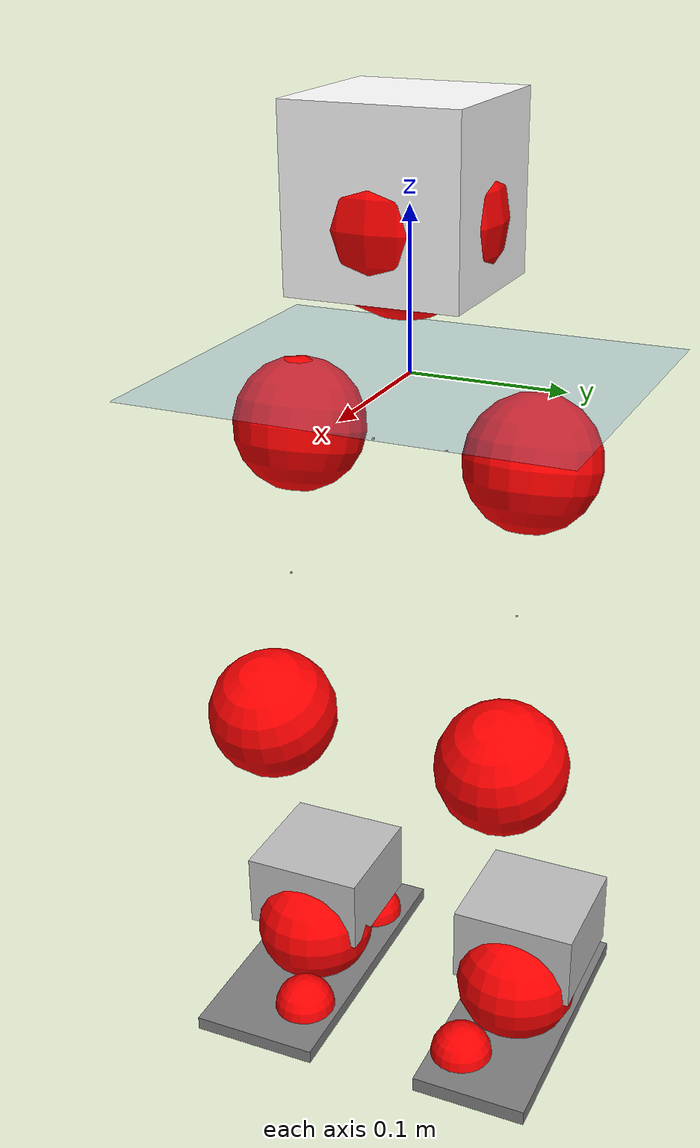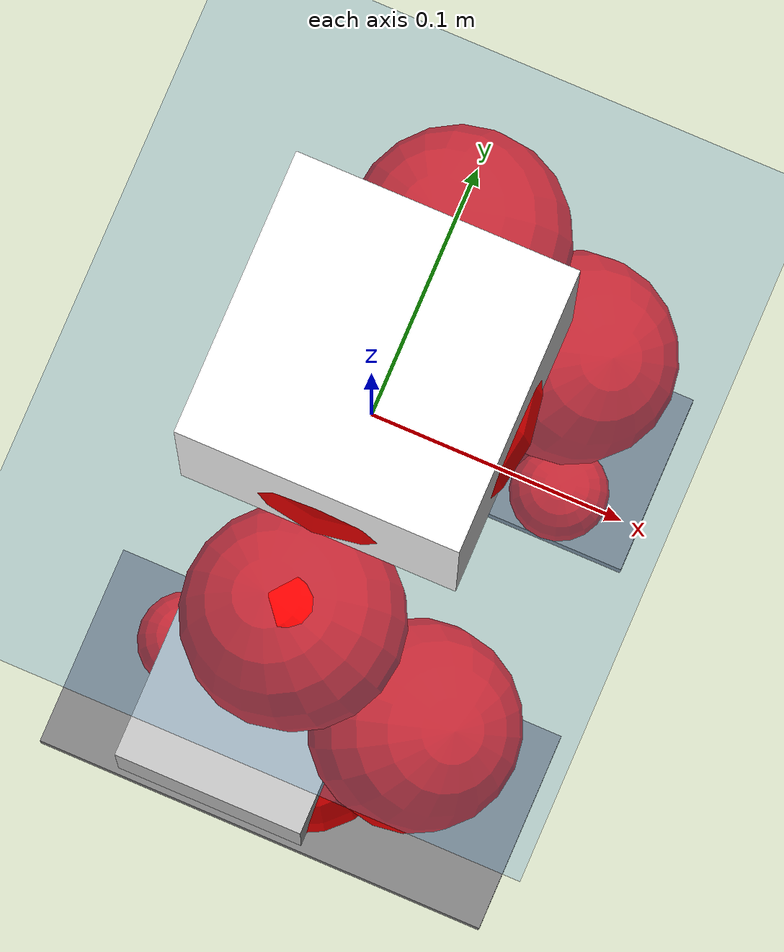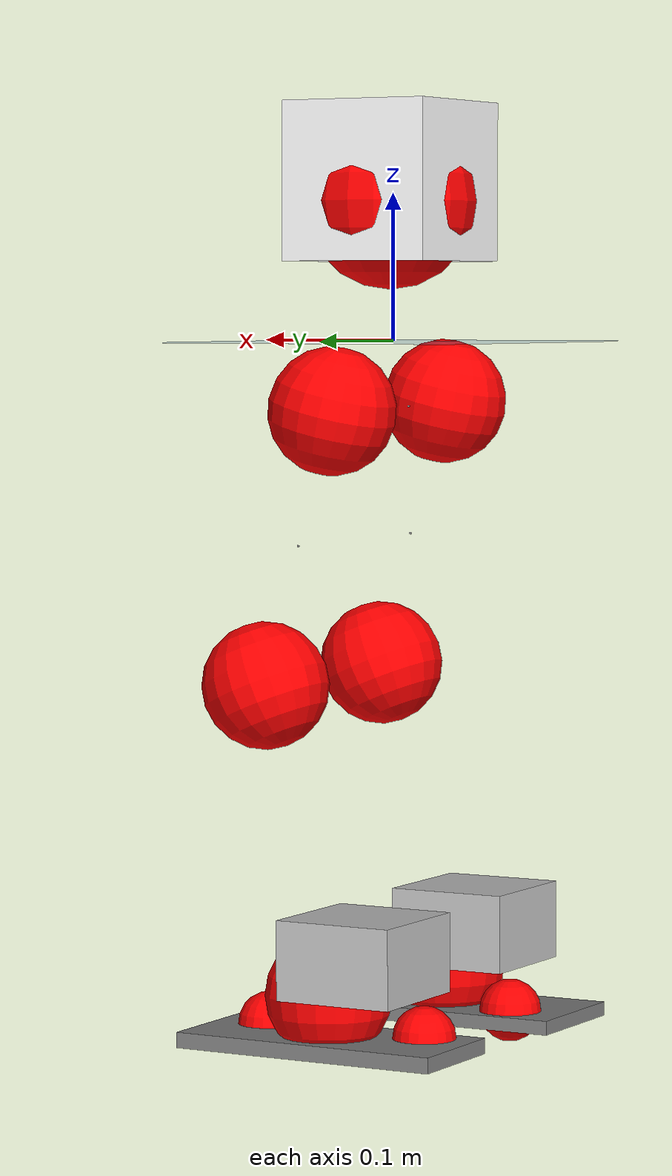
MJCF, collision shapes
<mujoco model="pi_12dof_release_v1">
  <compiler angle="radian" assetdir="assets" balanceinertia="true" inertiafromgeom="false"/>

  <option timestep="0.005" density="1.2" viscosity="2e-05"/>

  <size nkey="1"/>

  <visual>
    <quality shadowsize="8192"/>
    <map shadowclip="0.5"/>
  </visual>

  <default>
    <default class="/">
      <joint armature="0.01" damping="0.01" frictionloss="0.01"/>
      <geom contype="0" conaffinity="0" group="1" solref="-1000 -80"/>
      <site size="0.01 0.005 0.005" group="5"/>
      <general forcelimited="true" biastype="affine" gainprm="20" biasprm="0 -20 -0.5"/>
      <default class="foot">
        <geom size="0.0845 0.036 0.005" type="box" condim="6" group="4" priority="1" friction="0.9 0.2 0.2" solimp="0.015 1 0.005"/>
      </default>
      <default class="reward_collision_sphere">
        <geom group="5" rgba="1 0 0 1"/>
      </default>
    </default>
  </default>

  <asset>
    <texture type="skybox" colorspace="auto" name="//unnamed_texture_0" builtin="gradient" rgb1="0.95 0.95 0.95" rgb2="0.95 0.95 0.95" width="100" height="600"/>
    <texture type="2d" colorspace="auto" name="texplane" builtin="checker" rgb1="0.345 0.575 0.748" rgb2="0.345 0.575 0.748" markrgb="1 1 1" width="512" height="512"/>
    <material name="MatPlane" class="/" texture="texplane" texuniform="true" texrepeat="2 2" specular="0.9"/>
    <mesh name="baselink_1" class="/" file="baselink_1.STL"/>
    <mesh name="r_hip_pitch_link" class="/" file="r_hip_pitch_link.STL"/>
    <mesh name="r_hip_roll_link" class="/" file="r_hip_roll_link.STL"/>
    <mesh name="r_thigh_link" class="/" file="r_thigh_link.STL"/>
    <mesh name="r_calf_link" class="/" file="r_calf_link.STL"/>
    <mesh name="r_ankle_pitch_link" class="/" file="r_ankle_pitch_link.STL"/>
    <mesh name="r_ankle_roll_link" class="/" file="r_ankle_roll_link.STL"/>
    <mesh name="l_hip_pitch_link" class="/" file="l_hip_pitch_link.STL"/>
    <mesh name="l_hip_roll_link" class="/" file="l_hip_roll_link.STL"/>
    <mesh name="l_thigh_link" class="/" file="l_thigh_link.STL"/>
    <mesh name="l_calf_link" class="/" file="l_calf_link.STL"/>
    <mesh name="l_ankle_pitch_link" class="/" file="l_ankle_pitch_link.STL"/>
    <mesh name="l_ankle_roll_link" class="/" file="l_ankle_roll_link.STL"/>
  </asset>

  <worldbody>
    <geom name="floor" class="/" size="100 100 0.125" type="plane" group="0" material="MatPlane"/>
    <light name="toplight_shadow" class="/" pos="0 0 5" dir="0.0990148 0.0990148 -0.990148" type="directional" ambient="0.04 0.04 0.04" diffuse="0.55 0.55 0.55" specular="0.12 0.12 0.12"/>
    <light name="toplight_fill" class="/" pos="0 0 5" dir="0.0990148 0.0990148 -0.990148" type="directional" castshadow="false" ambient="0.04 0.04 0.04" diffuse="0.3 0.3 0.3" specular="0.08 0.08 0.08"/>
    <body name="trunk" pos="0.00246858 -0.000795923 -0.00258818" quat="1 9.5573e-05 8.94e-05 9.79526e-05">
      <inertial pos="0.00520189 -0.00354066 0.0561775" quat="0.688883 0.00393175 0.00196426 0.724859" mass="2.83242" diaginertia="0.0052561 0.0078068 0.020848"/>
      <joint name="//unnamed_joint_0" type="free"/>
      <geom name="//unnamed_geom_1" class="/" type="mesh" density="0" rgba="1 1 1 1" mesh="baselink_1"/>
      <geom name="//unnamed_geom_2" class="/" size="0.0539493 0.0539493 0.0539493" pos="0 0 0.110515" type="box" rgba="1 1 1 1"/>
      <geom name="//unnamed_geom_3" class="reward_collision_sphere" size="0.0593442" pos="0 0 0.0967009"/>
      <site name="imu" class="/" pos="-0.00337528 0.0131551 -0.0126989" size="0.0107899"/>
      <camera name="track" class="/" pos="0 -1.93698 0" quat="0.707107 0.707107 0 0" mode="trackcom"/>
      <camera name="ego_camera" class="/" pos="0.0665271 0 0.24866" quat="-0.5 -0.5 0.5 0.5"/>
      <body name="r_hip_pitch_link" pos="-0.00128857 -0.0239293 -0.0426915" quat="0.99205 0.000227645 -0.125845 -1.77146e-05">
        <inertial pos="0.00412302 -0.0558514 -0.00235872" quat="-0.0185298 0.705747 -0.0284371 0.70765" mass="0.450836" diaginertia="5.75407e-05 8.4398e-05 0.000422189"/>
        <joint name="r_hip_pitch_joint" class="/" pos="0 0 0" axis="-0.00449128 -0.99999 -0.000402459" stiffness="0.0177562" range="-1.75068 1.30212" armature="0.0109736" damping="0.0174446" frictionloss="0.0111557"/>
        <geom name="//unnamed_geom_4" class="/" type="mesh" density="0" rgba="0.75294 0.75294 0.75294 1" mesh="r_hip_pitch_link"/>
        <geom name="//unnamed_geom_5" class="/" size="0.000539493 0.000539493 0.000539493" type="box" rgba="0.75294 0.75294 0.75294 1"/>
        <body name="r_hip_roll_link" pos="0.000308117 -0.0512673 0.0026991" quat="1 2.24247e-05 -4.43961e-06 4.94658e-06">
          <inertial pos="-0.00413269 0.000541825 -0.0853831" quat="0.706081 -0.0799876 -0.0820429 0.698799" mass="0.468785" diaginertia="0.000180436 0.00024224 0.000619523"/>
          <joint name="r_hip_roll_joint" class="/" pos="0 0 0" axis="-0.999998 -0.00100989 0.00151076" range="-0.110404 0.539793" armature="0.0116942" damping="0.00769249" frictionloss="0.0104862"/>
          <geom name="//unnamed_geom_6" class="/" type="mesh" density="0" rgba="0.75294 0.75294 0.75294 1" mesh="r_hip_roll_link"/>
          <geom name="//unnamed_geom_7" class="/" size="0.000539493 0.000539493 0.000539493" type="box" rgba="0.75294 0.75294 0.75294 1"/>
          <geom name="//unnamed_geom_8" class="reward_collision_sphere" size="0.0431594"/>
          <body name="r_thigh_link" pos="0.00153308 0.00308057 -0.0963767" quat="1 0.000259884 7.22299e-05 -0.000487047">
            <inertial pos="0.00170553 0.00307329 -0.0659885" quat="0.738402 0.674336 0.00578707 -0.000762437" mass="0.145659" diaginertia="6.61444e-05 8.25582e-05 0.000286431"/>
            <joint name="r_thigh_joint" class="/" pos="0 0 0" axis="0.000697813 -0.000439615 -1" stiffness="0.0169665" range="-0.308674 0.620387" armature="0.0113053" damping="0.019496" frictionloss="0.0108035"/>
            <geom name="//unnamed_geom_9" class="/" type="mesh" density="0" rgba="0.75294 0.75294 0.75294 1" mesh="r_thigh_link"/>
            <geom name="//unnamed_geom_10" class="/" size="0.000539493 0.000539493 0.000539493" type="box" rgba="0.75294 0.75294 0.75294 1"/>
            <body name="r_calf_link" pos="0.00160849 -0.00387266 -0.0957022" quat="0.94727 8.64615e-05 0.320436 0.000200181">
              <inertial pos="-0.000364053 0.00180154 -0.0962635" quat="0.999985 -0.00179167 -5.26143e-05 0.00513981" mass="0.977895" diaginertia="0.00191468 0.00292897 0.000872422"/>
              <joint name="r_calf_joint" class="/" pos="0 0 0" axis="0.00174973 -0.999998 -0.000657685" range="-1.64897 0.66862" armature="0.00876878" damping="0.0190638" frictionloss="0.00900872"/>
              <geom name="//unnamed_geom_11" class="/" type="mesh" density="0" rgba="0.75294 0.75294 0.75294 1" mesh="r_calf_link"/>
              <geom name="//unnamed_geom_12" class="/" size="0.000539493 0.000539493 0.000539493" type="box" rgba="0.75294 0.75294 0.75294 1"/>
              <geom name="//unnamed_geom_13" class="reward_collision_sphere" size="0.0431594"/>
              <body name="r_ankle_pitch_link" pos="0.00211598 -0.00200614 -0.194752" quat="0.98027 -0.000206924 -0.197661 -0.000174707">
                <inertial pos="0.00359846 0.00663609 -0.00278779" quat="-0.00461575 0.708234 -0.00232254 0.705959" mass="0.222747" diaginertia="0.00016169 0.00017714 0.000584708"/>
                <joint name="r_ankle_pitch_joint" class="/" pos="0 0 0" axis="0.0116743 -0.999882 0.0100282" stiffness="0.0129518" range="-1.29166 0.502181" armature="0.00992824" damping="0.00873718" frictionloss="0.0102674"/>
                <geom name="//unnamed_geom_14" class="/" type="mesh" density="0" rgba="0.75294 0.75294 0.75294 1" mesh="r_ankle_pitch_link"/>
                <geom name="//unnamed_geom_15" class="/" size="0.0420804 0.0431594 0.0269746" type="box" rgba="0.75294 0.75294 0.75294 1"/>
                <body name="r_ankle_roll_link" pos="0.0677638 0.00139966 -0.000150701" quat="1 -2.43035e-05 6.44577e-06 -1.33666e-05">
                  <inertial pos="-0.0189799 -8.13743e-05 -0.022541" quat="0.556382 0.433937 0.430473 0.562877" mass="0.667993" diaginertia="0.000611226 0.000867023 0.00141099"/>
                  <joint name="r_ankle_roll_joint" class="/" pos="0 0 0" axis="-0.999769 -0.00569403 -0.0207409" range="-0.161252 0.163416" armature="0.0118767" damping="0.00270401" frictionloss="0.0103169"/>
                  <geom name="//unnamed_geom_16" class="/" type="mesh" density="0" rgba="0.75294 0.75294 0.75294 1" mesh="r_ankle_roll_link"/>
                  <geom name="//unnamed_geom_17" class="/" type="mesh" rgba="0.75294 0.75294 0.75294 1" mesh="r_ankle_roll_link"/>
                  <geom name="right_foot" class="foot" size="0.102029 0.0448095 0.00485107" pos="-0.0452384 0 -0.0607835"/>
                  <geom name="//unnamed_geom_19" class="reward_collision_sphere" size="0.0431594" pos="-0.0443514 0 -0.0276288"/>
                  <geom name="//unnamed_geom_20" class="reward_collision_sphere" size="0.0215797" pos="0.0133054 0.0193698 -0.0552577"/>
                  <geom name="//unnamed_geom_21" class="reward_collision_sphere" size="0.0215797" pos="-0.106443 0.0193698 -0.0552577"/>
                  <site name="right_foot" class="foot" pos="-0.0452384 0 -0.0607835" size="0.0107899"/>
                </body>
              </body>
            </body>
          </body>
        </body>
      </body>
      <body name="l_hip_pitch_link" pos="-0.00268929 0.0251113 -0.0441759" quat="0.991931 -1.19228e-05 -0.126782 0.00015706">
        <inertial pos="-0.00172242 0.0496539 -0.000285756" quat="-0.0392237 0.706227 0.0287988 0.706311" mass="0.502183" diaginertia="7.0054e-05 8.9848e-05 0.000489667"/>
        <joint name="l_hip_pitch_joint" class="/" pos="0 0 0" axis="-0.0049823 0.999945 0.00927529" range="-1.21255 1.73806" armature="0.0108941" damping="0.0068468" frictionloss="0.0121458"/>
        <geom name="//unnamed_geom_22" class="/" type="mesh" density="0" rgba="0.75294 0.75294 0.75294 1" mesh="l_hip_pitch_link"/>
        <geom name="//unnamed_geom_23" class="/" size="0.000539493 0.000539493 0.000539493" type="box" rgba="0.75294 0.75294 0.75294 1"/>
        <body name="l_hip_roll_link" pos="0.00180834 0.0566719 0.000211214" quat="0.999999 0.000169744 0.000999572 2.29413e-05">
          <inertial pos="-0.00222871 -0.00112059 -0.0865528" quat="0.695915 -0.0725817 -0.0774015 0.710242" mass="0.493042" diaginertia="0.000189264 0.000237092 0.000669288"/>
          <joint name="l_hip_roll_joint" class="/" pos="0 0 0" axis="-0.999942 0.00944775 -0.00511651" range="-0.55353 0.0634718" armature="0.0108589" damping="0.0247743" frictionloss="0.0119822"/>
          <geom name="//unnamed_geom_24" class="/" type="mesh" density="0" rgba="0.75294 0.75294 0.75294 1" mesh="l_hip_roll_link"/>
          <geom name="//unnamed_geom_25" class="/" size="0.000539493 0.000539493 0.000539493" type="box" rgba="0.75294 0.75294 0.75294 1"/>
          <geom name="//unnamed_geom_26" class="reward_collision_sphere" size="0.0431594"/>
          <body name="l_thigh_link" pos="0.00183079 0.00179318 -0.0937855" quat="1 -5.6313e-06 -2.42634e-05 4.16534e-05">
            <inertial pos="0.000688713 -0.00182553 -0.0638739" quat="0.675984 0.736916 0.000367388 -0.000213064" mass="0.141696" diaginertia="6.84172e-05 7.93517e-05 0.000288714"/>
            <joint name="l_thigh_joint" class="/" pos="0 0 0" axis="-0.00762395 0.00688535 -0.999947" range="-0.59381 0.265146" armature="0.00964693" damping="0.00713032" frictionloss="0.0100363"/>
            <geom name="//unnamed_geom_27" class="/" type="mesh" density="0" rgba="0.75294 0.75294 0.75294 1" mesh="l_thigh_link"/>
            <geom name="//unnamed_geom_28" class="/" size="0.000539493 0.000539493 0.000539493" type="box" rgba="0.75294 0.75294 0.75294 1"/>
            <body name="l_calf_link" pos="9.1317e-05 0.00171175 -0.0975326" quat="0.947705 -0.000253335 0.319146 8.081e-05">
              <inertial pos="0.000242718 0.00350223 -0.097233" quat="0.999936 0.01087 -0.00109618 0.00288817" mass="1.03496" diaginertia="0.00199619 0.00306444 0.000858883"/>
              <joint name="l_calf_joint" class="/" pos="0 0 0" axis="0.00451259 0.999968 -0.00659638" range="-0.68837 1.68156" armature="0.0123016" damping="0.00704479" frictionloss="0.00936554"/>
              <geom name="//unnamed_geom_29" class="/" type="mesh" density="0" rgba="0.75294 0.75294 0.75294 1" mesh="l_calf_link"/>
              <geom name="//unnamed_geom_30" class="/" size="0.000539493 0.000539493 0.000539493" type="box" rgba="0.75294 0.75294 0.75294 1"/>
              <geom name="//unnamed_geom_31" class="reward_collision_sphere" size="0.0431594"/>
              <body name="l_ankle_pitch_link" pos="-0.000549049 -5.18726e-05 -0.193095" quat="0.980261 -0.000555378 -0.197705 -0.00048616">
                <inertial pos="0.0036508 -0.00302674 -0.000565245" quat="-0.00408089 0.70579 0.00362687 0.7084" mass="0.207674" diaginertia="0.000158257 0.000184461 0.000594637"/>
                <joint name="l_ankle_pitch_joint" class="/" pos="0 0 0" axis="0.00950794 0.999953 -0.00206092" range="-0.551842 1.30855" armature="0.0107894" damping="0.0102614" frictionloss="0.0121343"/>
                <geom name="//unnamed_geom_32" class="/" type="mesh" density="0" rgba="0.75294 0.75294 0.75294 1" mesh="l_ankle_pitch_link"/>
                <geom name="//unnamed_geom_33" class="/" size="0.0420804 0.0431594 0.0269746" type="box" rgba="0.75294 0.75294 0.75294 1"/>
                <body name="l_ankle_roll_link" pos="0.0710517 -0.000209949 0.000302657" quat="0.999999 -0.00108968 -3.72825e-05 -0.000189815">
                  <inertial pos="-0.024763 0.000926062 -0.0180319" quat="0.56373 0.420323 0.431378 0.565199" mass="0.646857" diaginertia="0.000658473 0.000902986 0.00149474"/>
                  <joint name="l_ankle_roll_joint" class="/" pos="0 0 0" axis="-1 0.000674397 0.000635403" range="-0.207339 0.156859" armature="0.0108301" damping="0.0188664" frictionloss="0.0121137"/>
                  <geom name="//unnamed_geom_34" class="/" type="mesh" density="0" rgba="0.75294 0.75294 0.75294 1" mesh="l_ankle_roll_link"/>
                  <geom name="//unnamed_geom_35" class="/" type="mesh" rgba="0.75294 0.75294 0.75294 1" mesh="l_ankle_roll_link"/>
                  <geom name="left_foot" class="foot" size="0.096068 0.0400808 0.00531222" pos="-0.0452384 0 -0.0607835"/>
                  <geom name="//unnamed_geom_37" class="reward_collision_sphere" size="0.0431594" pos="-0.0443514 0 -0.0276288"/>
                  <geom name="//unnamed_geom_38" class="reward_collision_sphere" size="0.0215797" pos="0.0133054 -0.0193698 -0.0552577"/>
                  <geom name="//unnamed_geom_39" class="reward_collision_sphere" size="0.0215797" pos="-0.106443 -0.0193698 -0.0552577"/>
                  <site name="left_foot" class="foot" pos="-0.0452384 0 -0.0607835" size="0.0107899"/>
                </body>
              </body>
            </body>
          </body>
        </body>
      </body>
    </body>
  </worldbody>

  <contact>
    <pair class="/" geom1="floor" geom2="right_foot" name="//unnamed_contact_1"/>
    <pair class="/" geom1="floor" geom2="left_foot" name="//unnamed_contact_0"/>
  </contact>

  <actuator>
    <general name="r_hip_pitch_joint" class="/" joint="r_hip_pitch_joint" forcerange="-20.8578 20.8578" gainprm="22.4541" biasprm="0 -22.4541 -0.513073"/>
    <general name="r_hip_roll_joint" class="/" joint="r_hip_roll_joint" forcerange="-22.4284 22.4284" gainprm="22.4541" biasprm="0 -22.4541 -0.513073"/>
    <general name="r_thigh_joint" class="/" joint="r_thigh_joint" forcerange="-22.9811 22.9811" gainprm="22.4541" biasprm="0 -22.4541 -0.513073"/>
    <general name="r_calf_joint" class="/" joint="r_calf_joint" forcerange="-20.9948 20.9948" gainprm="22.4541" biasprm="0 -22.4541 -0.513073"/>
    <general name="r_ankle_pitch_joint" class="/" joint="r_ankle_pitch_joint" forcerange="-24.43 24.43" gainprm="22.4541" biasprm="0 -22.4541 -0.513073"/>
    <general name="r_ankle_roll_joint" class="/" joint="r_ankle_roll_joint" forcerange="-20.8958 20.8958" gainprm="22.4541" biasprm="0 -22.4541 -0.513073"/>
    <general name="l_hip_pitch_joint" class="/" joint="l_hip_pitch_joint" forcerange="-22.8223 22.8223" gainprm="22.4541" biasprm="0 -22.4541 -0.513073"/>
    <general name="l_hip_roll_joint" class="/" joint="l_hip_roll_joint" forcerange="-20.9212 20.9212" gainprm="22.4541" biasprm="0 -22.4541 -0.513073"/>
    <general name="l_thigh_joint" class="/" joint="l_thigh_joint" forcerange="-22.4873 22.4873" gainprm="22.4541" biasprm="0 -22.4541 -0.513073"/>
    <general name="l_calf_joint" class="/" joint="l_calf_joint" forcerange="-19.7927 19.7927" gainprm="22.4541" biasprm="0 -22.4541 -0.513073"/>
    <general name="l_ankle_pitch_joint" class="/" joint="l_ankle_pitch_joint" forcerange="-22.2657 22.2657" gainprm="22.4541" biasprm="0 -22.4541 -0.513073"/>
    <general name="l_ankle_roll_joint" class="/" joint="l_ankle_roll_joint" forcerange="-22.357 22.357" gainprm="22.4541" biasprm="0 -22.4541 -0.513073"/>
  </actuator>

  <sensor>
    <gyro site="imu" name="imu_angular_velocity"/>
    <velocimeter site="imu" name="imu_linear_velocity"/>
    <framelinvel objtype="site" objname="left_foot" name="left_foot_global_linear_velocity"/>
    <framelinvel objtype="site" objname="right_foot" name="right_foot_global_linear_velocity"/>
  </sensor>

  <keyframe>
    <key name="home" qpos="0 0 0.291 1 0 0 0 0.4 0 0 -0.8 0.4 0 -0.4 0 0 0.8 -0.4 0"/>
  </keyframe>
</mujoco>
